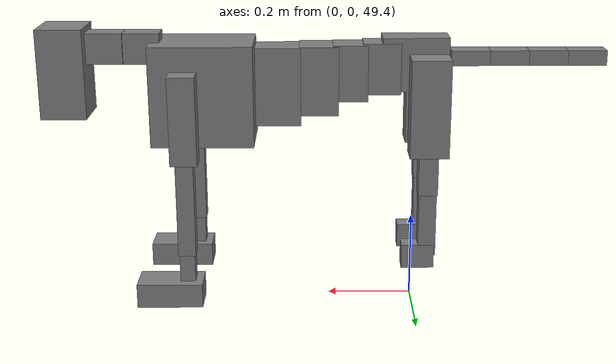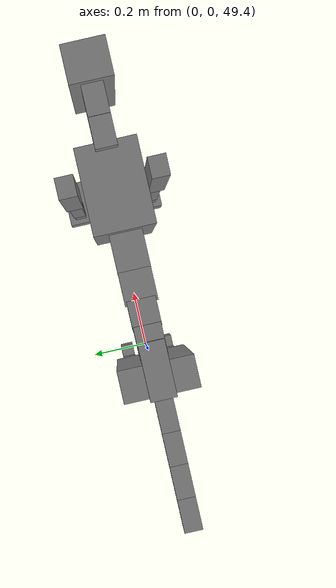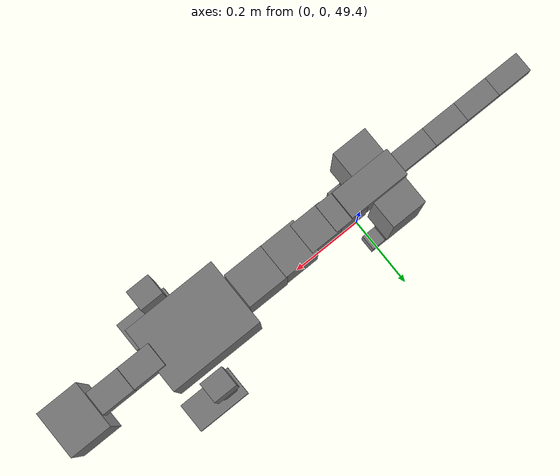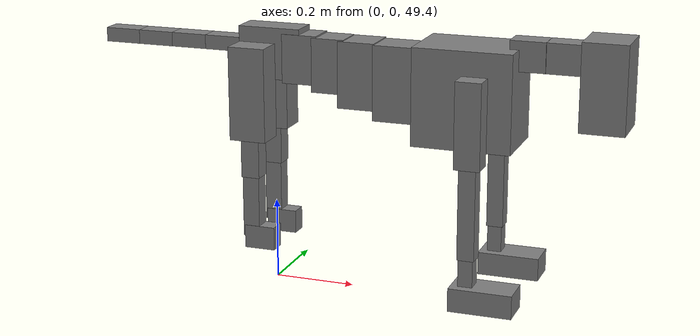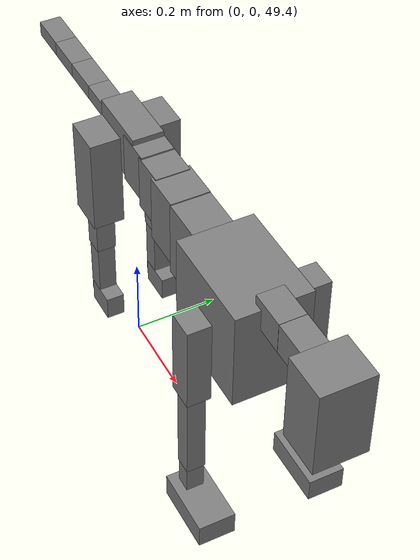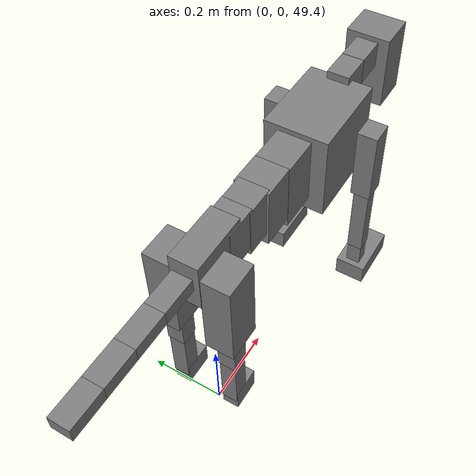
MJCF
<mujoco model="dog">

    <default>
        <joint armature="0.02" stiffness="1" damping="0.2" limited="true"/>
        <geom condim="3" friction="1 0.05 0.05" margin="0.01"/>
        <motor ctrllimited="true" ctrlrange="-1.0 1.0" forcelimited="true" gear="50"/>
    </default>

    <compiler inertiafromgeom="true" angle="radian"/>

    <option timestep="0.016" iterations="50" tolerance="1e-10" solver="Newton" jacobian="dense" cone="pyramidal"/>

    <size nconmax="20000" njmax="60000" nstack="5000000"/>
    <visual>
        <map force="0.1" zfar="30"/>
        <rgba haze="0.15 0.25 0.35 1"/>
        <quality shadowsize="2048"/>
        <global offwidth="800" offheight="800"/>
    </visual>

    <asset>
        <texture type="skybox" builtin="gradient" rgb1="0.3 0.5 0.7" rgb2="0 0 0" width="512" height="512"/>
        <texture name="texplane" type="2d" builtin="checker" rgb1=".2 .3 .4" rgb2=".1 0.15 0.2" width="512" height="512"
                 mark="cross" markrgb=".8 .8 .8"/>
        <texture name="texgeom" type="cube" builtin="flat" mark="cross" width="127" height="1278" rgb1="0.8 0.6 0.4"
                 rgb2="0.8 0.6 0.4" markrgb="1 1 1" random="0.01"/>

        <material name="matplane" reflectance="0.3" texture="texplane" texrepeat="1 1" texuniform="true"/>
        <material name="matgeom" texture="texgeom" texuniform="true" rgba="0.8 0.6 .4 1"/>
    </asset>

    <worldbody>
        <geom name="floor" pos="0 0 0" size="0 0 .25" type="plane" material="matplane" condim="3"/>

        <light directional="false" diffuse=".2 .2 .2" specular="0 0 0" pos="0 0 5" dir="0 0 -1" castshadow="false"/>
        <light mode="targetbodycom" target="torso" directional="false" diffuse=".8 .8 .8" specular="0.3 0.3 0.3"
               pos="0 0 4.0" dir="0 0 -1"/>

        <body name="root" pos="0 0 50">
            <freejoint name="root_1"/>
            <geom type="box" pos="0 0 -0.02" size="0.0774  0.0358  0.063" density="2030"/>

            <body name="spine1" pos="0.054 0 0">
                <joint name="spine1_y" axis="0 1 0" range="0 0.7" limited="true"/>
                <geom type="box" pos="0.02375 0 -0.03" size="0.04375  0.0375  0.05985" density="2030"/>

                <body name="spine2" pos="0.0612 0 0">
                    <joint name="spine2_y" axis="0 1 0" range="-0.15 0.15" limited="true"/>
                    <geom type="box" pos="0.03555  0  -0.04" size="0.04055  0.039  0.06615" density="2030"/>

                    <body name="spine3" pos="0.0730 0 0">
                        <joint name="spine3_y" axis="0 1 0" range="-0.15 0.15" limited="true"/>
                        <geom type="box" pos="0.03555  0  -0.057" size="0.04555  0.0445  0.081" density="2030"/>

                        <body name="spine4" pos="0.0780 0 0">
                            <joint name="spine4_y" axis="0 1 0" range="-0.15 0.15" limited="true"/>
                            <geom type="box" pos="0.05265  0  -0.07" size="0.05265  0.045  0.09135" density="2030"/>

                            <body name="torso" pos="0.1082 0 0">
                                <joint name="torso_y" axis="0 1 0" range="-0.15 0.15" limited="true"/>
                                <geom type="box" pos="0.11925  0  -0.085" size="0.11925  0.085  0.11745"
                                      density="2030"/>

                                <body name="neck1" pos="0.2160  0   0.0180">
                                    <joint name="neck1_y" axis="0 1 0" range="-1.2  -1" limited="true"/>
                                    <geom type="box" pos="0.0423  0  0" size="0.0423  0.03  0.036" density="2325"/>

                                    <body name="neck2" pos="0.0853  0  0">
                                        <joint name="neck2_y" axis="0 1 0" range="0.1  0" limited="true"/>
                                        <geom type="box" pos="0.0423  0  0" size="0.0423  0.03  0.036" density="2325"/>

                                        <body name="head" pos="0.0853  0  0">
                                            <joint name="head_y" axis="0 1 0" range="-0.3  -0.2" limited="true"/>
                                            <geom type="box" pos="0.0531  0  -0.055" size="0.0531  0.06  0.1044"
                                                  density="4030"/>

                                        </body>
                                    </body>
                                </body>

                                <body name="front_shoulder" pos="0.156  0   -0.0480">
                                    <joint name="front_shoulder_y" axis="0 1 0" range="-1 1.5" limited="true"/>
                                    <geom type="box" pos="0 0.13 -0.0759" size="0.0308  0.0263  0.1026" density="1158"/>
                                    <geom type="box" pos="0 -0.13 -0.0759" size="0.0308  0.0263  0.1026"
                                          density="1158"/>

                                    <body name="front_elbow" pos="0  0  -0.1519">
                                        <joint name="front_elbow_y" axis="0 1 0" range="-2 0" limited="true"/>
                                        <geom type="box" pos="0 0.13 -0.1218" size="0.0203  0.0208  0.1218"
                                              density="1081"/>
                                        <geom type="box" pos="0 -0.13 -0.1218" size="0.0203  0.0208  0.1218"
                                              density="1081"/>

                                        <body name="front_wrist" pos="0  0  -0.2437">
                                            <joint name="front_wrist_y" axis="0 1 0" range="-0.2 0" limited="true"/>
                                            <geom type="box" pos="0 0.13 -0.0395" size="0.0174  0.0194  0.0527"
                                                  density="1664"/>
                                            <geom type="box" pos="0 -0.13 -0.0395" size="0.0174  0.0194  0.0527"
                                                  density="1664"/>

                                            <body name="front_finger_end" pos="0  0  -0.0791">
                                                <joint name="front_finger_y" axis="0 1 0" range="-0.4 1"
                                                       limited="true"/>
                                                <geom type="box" pos="0.0413  0.13  -0.0132"
                                                      size="0.0758  0.0413  0.0282" density="1515"/>
                                                <geom type="box" pos="0.0413  -0.13  -0.0132"
                                                      size="0.0758  0.0413  0.0282" density="1515"/>

                                            </body>

                                        </body>
                                    </body>
                                </body>

                            </body>
                        </body>
                    </body>
                </body>
            </body>

            <body name="back_hip" pos="-0.03 0 -0.018">
                <joint name="back_hip_y" axis="0 1 0" range="-1.5 0.3" limited="true"/>
                <geom type="box" pos="0 0.07 -0.0917" size="0.0455  0.0357  0.1145" density="1154"/>
                <geom type="box" pos="0 -0.07 -0.0917" size="0.0455  0.0357  0.1145" density="1154"/>

                <body name="back_knee" pos="0  0  -0.1835">
                    <joint name="back_knee_y" axis="0 1 0" range="0 2.8" limited="true"/>
                    <geom type="box" pos="0 0.07 -0.0509" size="0.0228  0.0225  0.0664" density="1227"/>
                    <geom type="box" pos="0 -0.07 -0.0509" size="0.0228  0.0225  0.0664" density="1227"/>

                    <body name="back_ankle" pos="0  0  -0.1017">
                        <joint name="back_ankle_y" axis="0 1 0" range="-2.2 0" limited="true"/>
                        <geom type="box" pos="0 0.07 -0.0767" size="0.0206  0.0206  0.0880" density="1284"/>
                        <geom type="box" pos="0 -0.07 -0.0767" size="0.0206  0.0206  0.0880" density="1284"/>

                        <body name="back_toe_end" pos="0  0  -0.1534">
                            <joint name="back_toe_y" axis="0 1 0" range="-0.4 1" limited="true"/>
                            <geom type="box" pos="0.0209  0.07  -0.0137" size="0.0383  0.0209  0.0287" density="1515"/>
                            <geom type="box" pos="0.0209  -0.07  -0.0137" size="0.0383  0.0209  0.0287" density="1515"/>

                        </body>
                    </body>
                </body>
            </body>

            <body name="tail1" pos="-0.074 0 -0.006">
                <joint name="tail1_y" axis="0 1 0" range="-0.2 0.2" limited="true"/>
                <geom type="box" pos="-0.0536  0  0" size="0.045  0.025  0.0175" density="1587"/>

                <body name="tail2" pos="-0.09 0 0">
                    <joint name="tail2_y" axis="0 1 0" range="-0.2 0.2" limited="true"/>
                    <geom type="box" pos="-0.0536  0  0" size="0.045  0.025  0.0175" density="1587"/>

                    <body name="tail3" pos="-0.09 0 0">
                        <joint name="tail3_y" axis="0 1 0" range="-0.2 0.2" limited="true"/>
                        <geom type="box" pos="-0.0536  0  0" size="0.045  0.025  0.0175" density="1587"/>

                        <body name="tail4" pos="-0.09 0 0">
                            <joint name="tail4_y" axis="0 1 0" range="-0.2 0.2" limited="true"/>
                            <geom type="box" pos="-0.0536  0  0" size="0.045  0.025  0.0175" density="1587"/>

                        </body>
                    </body>
                </body>
            </body>
        </body>
    </worldbody>

    <actuator>
        <motor joint="spine1_y" forcerange="-150 150     "/>
        <motor joint="spine2_y" forcerange="-150 150     "/>
        <motor joint="spine3_y" forcerange="-150 150     "/>
        <motor joint="spine4_y" forcerange="-150 150     "/>
        <motor joint="torso_y" forcerange="-150 150     "/>
        <motor joint="neck1_y" forcerange="-100 100       "/>
        <motor joint="neck2_y" forcerange="-100 100       "/>
        <motor joint="head_y" forcerange="-150 150       "/>
        <motor joint="front_shoulder_y" forcerange="-159.77 115.57"/>
        <motor joint="front_elbow_y" forcerange="-137.23 113.93"/>
        <motor joint="front_wrist_y" forcerange="-94.60 60.44"/>
        <motor joint="front_finger_y" forcerange="-87.93 92.46"/>
        <motor joint="back_hip_y" forcerange="-319.61 356.55"/>
        <motor joint="back_knee_y" forcerange="-256.62 270.82"/>
        <motor joint="back_angle_y" forcerange="-128.75 100.98"/>
        <motor joint="back_toe_y" forcerange="-59.83 27.25"/>
        <motor joint="tail1_y" forcerange="-50 50     "/>
        <motor joint="tail2_y" forcerange="-50 50     "/>
        <motor joint="tail3_y" forcerange="-50 50     "/>
        <motor joint="tail4_y" forcerange="-50 50     "/>
    </actuator>
</mujoco>
